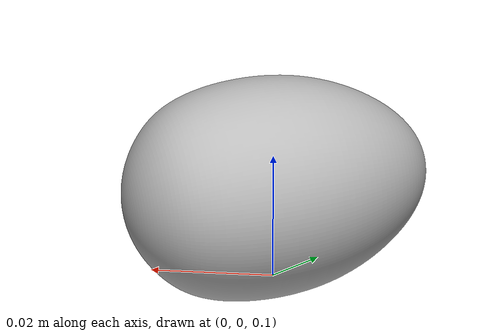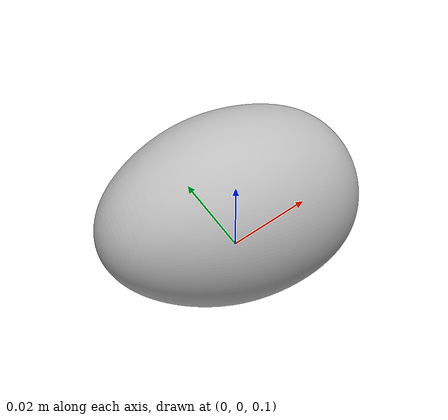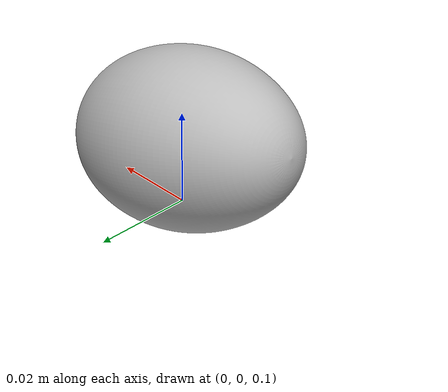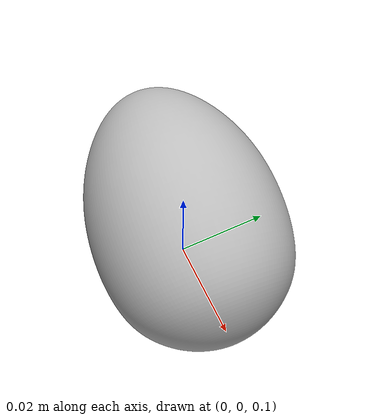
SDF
<?xml version="1.0" ?>
<sdf version="1.5">
  <model name="Banana">
    <link name="link">
      <pose>0 0 0.115 0 0 0</pose>
      <inertial>
        <mass>0.390</mass>
        <inertia>
          <ixx>0.00058</ixx>
          <ixy>0</ixy>
          <ixz>0</ixz>
          <iyy>0.00058</iyy>
          <iyz>0</iyz>
          <izz>0.00019</izz>
        </inertia>
      </inertial>
      <collision name="collision">
        <geometry>
          <mesh>
            <uri>model://4-Egg/meshes/Egg.dae</uri>
          </mesh>
        </geometry>
      </collision>
      <visual name="visual">
        <geometry>
          <mesh>
            <uri>model://4-Egg/meshes/Egg.dae</uri>
          </mesh>
        </geometry>
        <material>
          <script>
            <uri>model://4-Egg/materials/scripts</uri>
            <uri>model://4-Egg/materials/textures</uri>
            <name>Egg/Diffuse</name>
          </script>
        </material>
      </visual>
    </link>
  </model>
</sdf>
